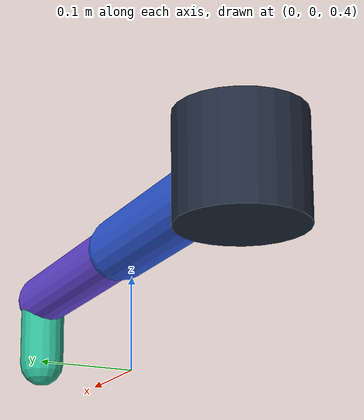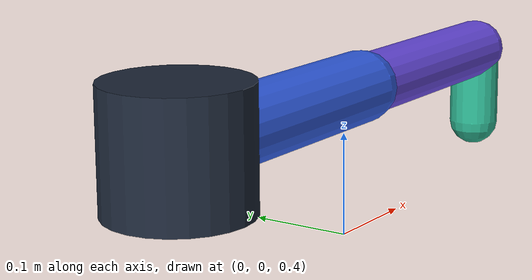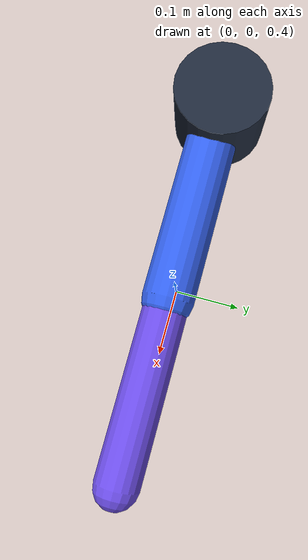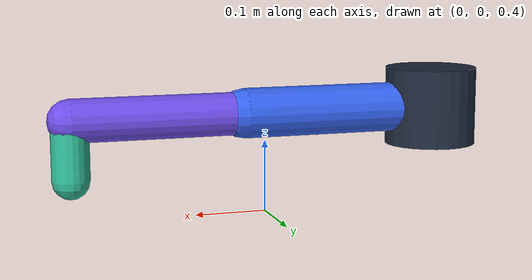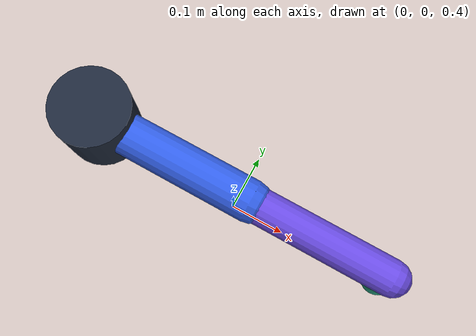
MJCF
<mujoco model="two link teaching arm">
  <!-- This file is a reusable robot module. scene.xml supplies the workcell. -->
  <default>
    <default class="arm_joint">
      <joint type="hinge" axis="0 0 1" damping="1.2" armature="0.015" limited="true"/>
    </default>
    <default class="arm_visual">
      <geom type="capsule" group="2" contype="0" conaffinity="0" mass="0"
            rgba="0.20 0.38 0.92 1"/>
    </default>
    <default class="arm_collision">
      <geom type="capsule" group="3" contype="1" conaffinity="1" density="650"
            rgba="0.20 0.38 0.92 0.18" friction="0.8 0.01 0.001"/>
    </default>
  </default>

  <worldbody>
    <body name="arm_base" pos="-0.25 0 0.54">
      <geom name="base_visual" type="cylinder" size="0.065 0.055" group="2"
            contype="0" conaffinity="0" rgba="0.12 0.16 0.23 1"/>

      <body name="link1">
        <joint name="shoulder" class="arm_joint" range="-1.40 1.40"/>
        <geom name="link1_visual" class="arm_visual" fromto="0 0 0 0.28 0 0" size="0.035"/>
        <geom name="link1_collision" class="arm_collision" fromto="0 0 0 0.28 0 0" size="0.032"/>

        <body name="link2" pos="0.28 0 0">
          <joint name="elbow" class="arm_joint" range="-2.20 2.20"/>
          <geom name="link2_visual" class="arm_visual" fromto="0 0 0 0.24 0 0" size="0.030"
                rgba="0.42 0.30 0.90 1"/>
          <geom name="link2_collision" class="arm_collision" fromto="0 0 0 0.24 0 0" size="0.027"/>

          <body name="tool" pos="0.24 0 0">
            <geom name="tool_visual" type="capsule" fromto="0 0 0 0 0 -0.08" size="0.026"
                  group="2" contype="0" conaffinity="0" mass="0" rgba="0.18 0.72 0.58 1"/>
            <geom name="tool_collision" type="capsule" fromto="0 0 0 0 0 -0.08" size="0.023"
                  group="3" contype="1" conaffinity="1" density="750"
                  rgba="0.18 0.72 0.58 0.18" friction="1.0 0.01 0.001"/>
            <site name="end_effector" pos="0 0 -0.08" size="0.012" rgba="1 0.35 0.15 1"/>
          </body>
        </body>
      </body>
    </body>
  </worldbody>

  <actuator>
    <position name="shoulder_position" joint="shoulder" kp="70" kv="8"
              ctrllimited="true" ctrlrange="-1.40 1.40"
              forcelimited="true" forcerange="-24 24"/>
    <position name="elbow_position" joint="elbow" kp="55" kv="7"
              ctrllimited="true" ctrlrange="-2.20 2.20"
              forcelimited="true" forcerange="-18 18"/>
  </actuator>

  <sensor>
    <jointpos name="shoulder_position_sensor" joint="shoulder"/>
    <jointpos name="elbow_position_sensor" joint="elbow"/>
    <jointvel name="shoulder_velocity_sensor" joint="shoulder"/>
    <jointvel name="elbow_velocity_sensor" joint="elbow"/>
    <actuatorfrc name="shoulder_force_sensor" actuator="shoulder_position"/>
    <actuatorfrc name="elbow_force_sensor" actuator="elbow_position"/>
    <framepos name="end_effector_position_sensor" objtype="site" objname="end_effector"/>
  </sensor>
</mujoco>
